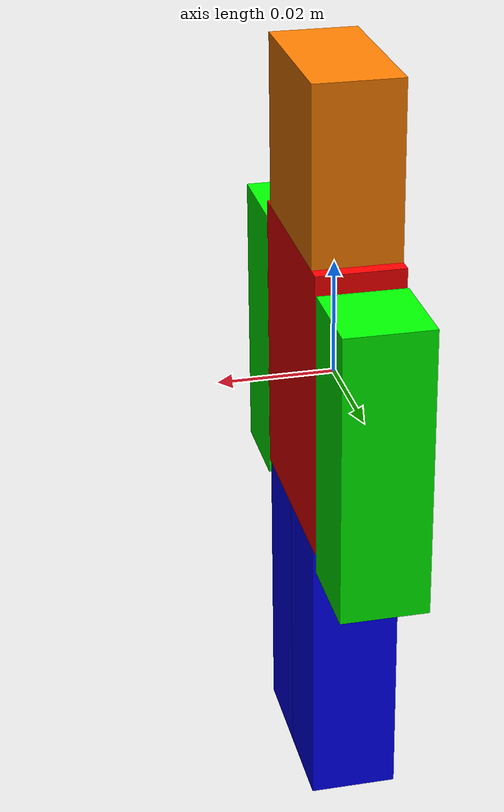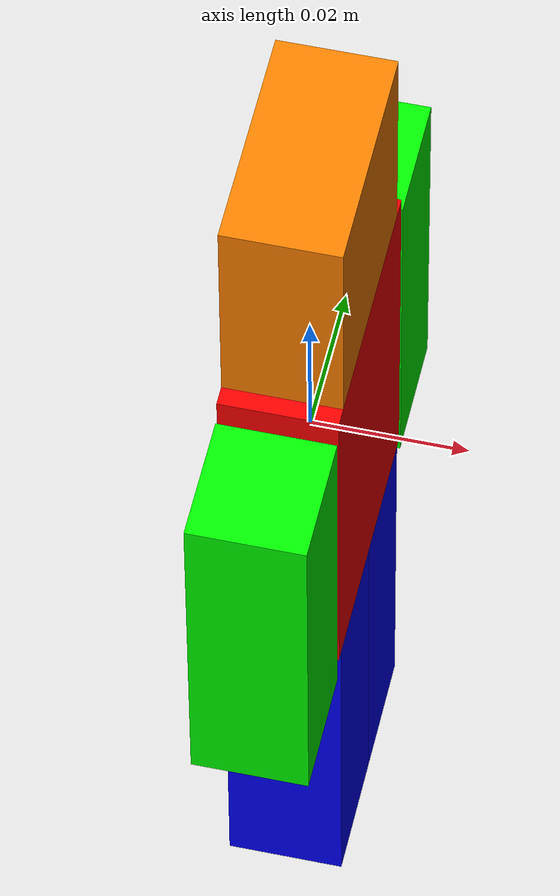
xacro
<?xml version="1.0"?>
<robot xmlns:xacro="http://www.ros.org/wiki/xacro" name="Robot 7">

<xacro:property name="total_weight" value="75" /> <!--KG-->
<xacro:property name="torso_weight" value="${total_weight * 0.6}" />
<xacro:property name="leg_weight" value="${total_weight * .15}" />
<xacro:property name="arm_weight" value="${total_weight * .05}" />
<!-- Basic Color Macros -->
<xacro:macro name="material_color" params="name color">
    <material name="${name}">
        <color rgba="${color}"/>
    </material>
</xacro:macro>

<!-- Predefined Common Colors -->
<xacro:property name="red" value="1.0 0.0 0.0 1.0"/>
<xacro:property name="green" value="0.0 1.0 0.0 1.0"/>
<xacro:property name="blue" value="0.0 0.0 1.0 1.0"/>
<xacro:property name="yellow" value="1.0 1.0 0.0 1.0"/>
<xacro:property name="cyan" value="0.0 1.0 1.0 1.0"/>
<xacro:property name="magenta" value="1.0 0.0 1.0 1.0"/>
<xacro:property name="white" value="1.0 1.0 1.0 1.0"/>
<xacro:property name="black" value="0.0 0.0 0.0 1.0"/>
<xacro:property name="gray" value="0.5 0.5 0.5 1.0"/>
<xacro:property name="orange" value="1.0 0.5 0.0 1.0"/>
<xacro:property name="purple" value="0.5 0.0 0.5 1.0"/>

<xacro:macro name="solid_sphere_inertia_tensors" params="mass radius" >
    <inertial>
        <origin xyz="0.0 0.0 0.0" rpy="0.0 0.0 0.0"/>
        <mass value="${weight}"/>
        <inertia
        ixx="${(2/5) * mass * radius * radius}" ixy="0.0" ixz="0.0"
        iyy="${(2/5) * mass * radius * radius}" iyz="0.0"
        izz="${(2/5) * mass * radius * radius}  "/>
    </inertial>
</xacro:macro>

<xacro:macro name="hollow_sphere_inertia_tensors" params="mass radius" >
    <inertial>
        <origin xyz="0.0 0.0 0.0" rpy="0.0 0.0 0.0"/>
        <mass value="${weight}"/>
        <inertia
        ixx="${(2/3) * mass * radius * radius}" ixy="0.0" ixz="0.0"
        iyy="${(2/3) * mass * radius * radius}" iyz="0.0"
        izz="${(2/3) * mass * radius * radius}  "/>
    </inertial>
</xacro:macro>

<xacro:macro name="cuboid_inertia_tensors" params="mass length" >
    <inertial>
        <origin xyz="0.0 0.0 0.0" rpy="0.0 0.0 0.0"/>
        <mass value="${mass}"/>
        <inertia
        ixx="${(mass/12)*((length*length*.025)+(length*length*0.0225))}" ixy="0.0" ixz="0.0"
        iyy="${(mass/12)*((length*length)+(length*length*0.0225))}" iyz="0.0"
        izz="${(mass/12)*((length*length)+(length*length*0.025))}"/>
    </inertial>
</xacro:macro>

<xacro:macro name="cuboid" params="name mass x_len y_len z_len origin rpy color">
    <link name="${name}">
        <visual>
            <geometry>
                <box size="${x_len} ${y_len} ${z_len}"/>
            </geometry>
            <origin xyz="${origin}" rpy="${rpy}"/>
            <xacro:material_color name="${color}" color="${color}"/>
        </visual>
        <collision>
            <geometry>
                <box size="${x_len} ${y_len} ${z_len}"/>
            </geometry>
            <origin xyz="${origin}" rpy="${rpy}"/>
        </collision>
        <xacro:cuboid_inertia_tensors mass="${mass}" length="${z_len}"/>
    </link>
</xacro:macro>

<xacro:macro name="revolve" params="name parent child hi lo axis offset">
    <joint name="${name}" type="revolute">
        <parent link="${parent}"/>
        <child link="${child}"/>
        <limit lower="${lo}" upper="${hi}" effort="20.0" velocity="20.0"/>
        <origin xyz="${offset}"/>
        <axis xyz="${axis}"/>
    </joint>
</xacro:macro>

<!-- Torso Links-->
<xacro:cuboid name="base_link" mass="${torso_weight * .12}" x_len=".015" y_len=".035" z_len=".05" origin="0 0 0" rpy="0 0 0" color="${red}"/>
<xacro:cuboid name="head" mass="${torso_weight * .12}" x_len=".015" y_len=".03" z_len=".03" origin="0 0 .015" rpy="0 0 0" color="${orange}"/>
<!-- Torso joints-->
<xacro:revolve name="gaze" parent="base_link" child="head" hi=".8" lo="-.8" axis="0 0 1" offset="0 0 .025"/>

<!-- Arm Links-->
<xacro:cuboid name="left_arm" mass="${leg_weight * .5}" x_len=".015" y_len=".0165" z_len=".05" origin="0 .009 -.025" rpy="0 0 0" color="${green}"/>
<xacro:cuboid name="right_arm" mass="${leg_weight * .5}" x_len=".015" y_len=".0165" z_len=".05" origin="0 -.009 -.025" rpy="0 0 0" color="${green}"/>
<!-- Arm joints-->
<xacro:revolve name="left_shoulder" parent="base_link" child="left_arm" hi=".8" lo="-.8" axis="0 1 0" offset="0 0.0175 .022"/>
<xacro:revolve name="right_shoulder" parent="base_link" child="right_arm" hi=".8" lo="-.8" axis="0 1 0" offset="0 -0.0175 .022"/>

<!-- Leg Links-->
<xacro:cuboid name="left_leg" mass="${leg_weight * .5}" x_len=".015" y_len=".0165" z_len=".05" origin="0 0 -.025" rpy="0 0 0" color="${blue}"/>
<xacro:cuboid name="right_leg" mass="${leg_weight * .5}" x_len=".015" y_len=".0165" z_len=".05" origin="0 0 -.025" rpy="0 0 0" color="${blue}"/>

<!-- Leg joints-->
<xacro:revolve name="left_hip" parent="base_link" child="left_leg" hi=".8" lo="-.8" axis="0 1 0" offset="0 0.008 -.025"/>
<xacro:revolve name="right_hip" parent="base_link" child="right_leg" hi=".8" lo="-.8" axis="0 1 0" offset="0 -0.008 -.025"/>

</robot>
